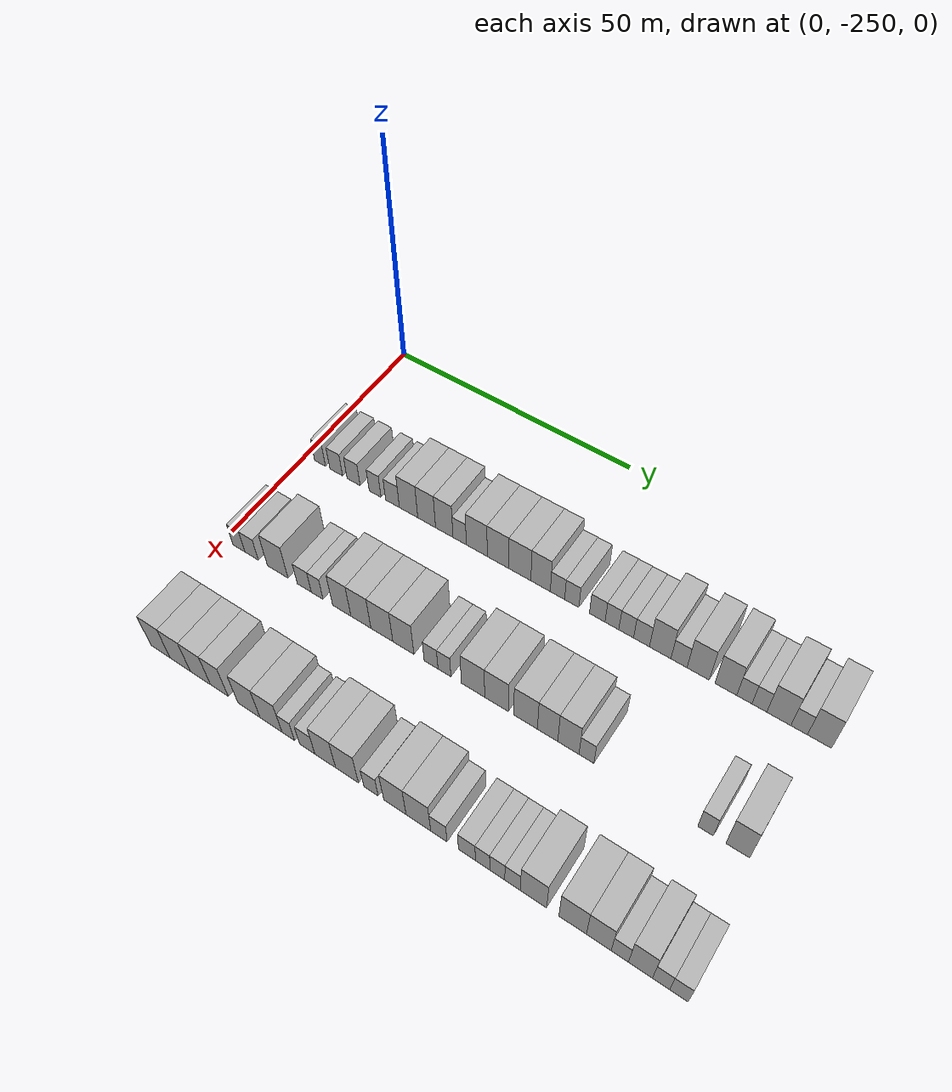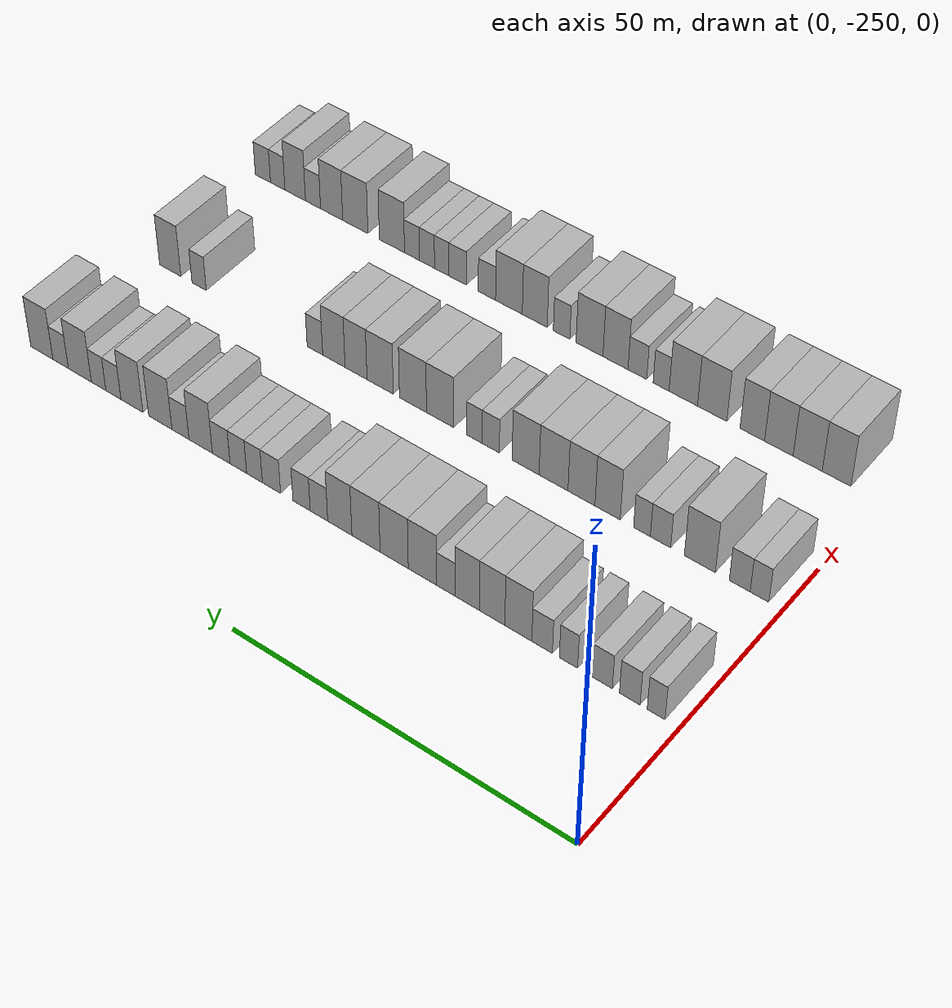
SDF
<sdf version="1.6">
 <world name="default">
  <model name="building_1">
   <static>1</static>
   <pose>25.0000 -246.7611 0 0.000000 0.000000 0.000000</pose>
   <link name="link">
    <pose>0 0 3.00 0 0 0</pose>
    <collision name="collision"><geometry><box><size>10.0000 2.4778 6.0000</size></box></geometry></collision>
    <visual name="visual">
     <cast_shadows>0</cast_shadows>
     <geometry><box><size>10.0000 2.4778 6.0000</size></box></geometry>
     <material>
      <script>
       <uri>model://HANNAS_wall/materials/scripts</uri>
       <uri>model://HANNAS_wall/materials/textures</uri>
       <name>vrc/HANNAS_wall</name>
      </script>
     </material>
    </visual>
   </link>
  </model>
  <model name="building_2">
   <static>1</static>
   <pose>25.0000 -243.0767 0 0.000000 0.000000 0.000000</pose>
   <link name="link">
    <pose>0 0 3.00 0 0 0</pose>
    <collision name="collision"><geometry><box><size>10.0000 2.8909 6.0000</size></box></geometry></collision>
    <visual name="visual">
     <cast_shadows>0</cast_shadows>
     <geometry><box><size>10.0000 2.8909 6.0000</size></box></geometry>
     <material>
      <script>
       <uri>model://HANNAS_wall/materials/scripts</uri>
       <uri>model://HANNAS_wall/materials/textures</uri>
       <name>vrc/HANNAS_wall</name>
      </script>
     </material>
    </visual>
   </link>
  </model>
  <model name="building_3">
   <static>1</static>
   <pose>25.0000 -239.1600 0 0.000000 0.000000 0.000000</pose>
   <link name="link">
    <pose>0 0 3.00 0 0 0</pose>
    <collision name="collision"><geometry><box><size>10.0000 2.9425 6.0000</size></box></geometry></collision>
    <visual name="visual">
     <cast_shadows>0</cast_shadows>
     <geometry><box><size>10.0000 2.9425 6.0000</size></box></geometry>
     <material>
      <script>
       <uri>model://HANNAS_wall/materials/scripts</uri>
       <uri>model://HANNAS_wall/materials/textures</uri>
       <name>vrc/HANNAS_wall</name>
      </script>
     </material>
    </visual>
   </link>
  </model>
  <model name="building_4">
   <static>1</static>
   <pose>25.0000 -234.3755 0 0.000000 0.000000 0.000000</pose>
   <link name="link">
    <pose>0 0 3.00 0 0 0</pose>
    <collision name="collision"><geometry><box><size>10.0000 2.6266 6.0000</size></box></geometry></collision>
    <visual name="visual">
     <cast_shadows>0</cast_shadows>
     <geometry><box><size>10.0000 2.6266 6.0000</size></box></geometry>
     <material>
      <script>
       <uri>model://HANNAS_wall/materials/scripts</uri>
       <uri>model://HANNAS_wall/materials/textures</uri>
       <name>vrc/HANNAS_wall</name>
      </script>
     </material>
    </visual>
   </link>
  </model>
  <model name="building_5">
   <static>1</static>
   <pose>25.0000 -230.5628 0 0.000000 0.000000 0.000000</pose>
   <link name="link">
    <pose>0 0 3.00 0 0 0</pose>
    <collision name="collision"><geometry><box><size>10.0000 2.9986 6.0000</size></box></geometry></collision>
    <visual name="visual">
     <cast_shadows>0</cast_shadows>
     <geometry><box><size>10.0000 2.9986 6.0000</size></box></geometry>
     <material>
      <script>
       <uri>model://HANNAS_wall/materials/scripts</uri>
       <uri>model://HANNAS_wall/materials/textures</uri>
       <name>vrc/HANNAS_wall</name>
      </script>
     </material>
    </visual>
   </link>
  </model>
  <model name="building_6">
   <static>1</static>
   <pose>25.0000 -227.0855 0 0.000000 0.000000 0.000000</pose>
   <link name="link">
    <pose>0 0 4.50 0 0 0</pose>
    <collision name="collision"><geometry><box><size>10.0000 3.9560 9.0000</size></box></geometry></collision>
    <visual name="visual">
     <cast_shadows>0</cast_shadows>
     <geometry><box><size>10.0000 3.9560 9.0000</size></box></geometry>
     <material>
      <script>
       <uri>model://HANNAS_wall/materials/scripts</uri>
       <uri>model://HANNAS_wall/materials/textures</uri>
       <name>vrc/HANNAS_wall</name>
      </script>
     </material>
    </visual>
   </link>
  </model>
  <model name="building_7">
   <static>1</static>
   <pose>25.0000 -223.2178 0 0.000000 0.000000 0.000000</pose>
   <link name="link">
    <pose>0 0 4.50 0 0 0</pose>
    <collision name="collision"><geometry><box><size>10.0000 3.7794 9.0000</size></box></geometry></collision>
    <visual name="visual">
     <cast_shadows>0</cast_shadows>
     <geometry><box><size>10.0000 3.7794 9.0000</size></box></geometry>
     <material>
      <script>
       <uri>model://HANNAS_wall/materials/scripts</uri>
       <uri>model://HANNAS_wall/materials/textures</uri>
       <name>vrc/HANNAS_wall</name>
      </script>
     </material>
    </visual>
   </link>
  </model>
  <model name="building_8">
   <static>1</static>
   <pose>25.0000 -219.4982 0 0.000000 0.000000 0.000000</pose>
   <link name="link">
    <pose>0 0 4.50 0 0 0</pose>
    <collision name="collision"><geometry><box><size>10.0000 3.6598 9.0000</size></box></geometry></collision>
    <visual name="visual">
     <cast_shadows>0</cast_shadows>
     <geometry><box><size>10.0000 3.6598 9.0000</size></box></geometry>
     <material>
      <script>
       <uri>model://HANNAS_wall/materials/scripts</uri>
       <uri>model://HANNAS_wall/materials/textures</uri>
       <name>vrc/HANNAS_wall</name>
      </script>
     </material>
    </visual>
   </link>
  </model>
  <model name="building_9">
   <static>1</static>
   <pose>25.0000 -216.2802 0 0.000000 0.000000 0.000000</pose>
   <link name="link">
    <pose>0 0 3.00 0 0 0</pose>
    <collision name="collision"><geometry><box><size>10.0000 2.7762 6.0000</size></box></geometry></collision>
    <visual name="visual">
     <cast_shadows>0</cast_shadows>
     <geometry><box><size>10.0000 2.7762 6.0000</size></box></geometry>
     <material>
      <script>
       <uri>model://HANNAS_wall/materials/scripts</uri>
       <uri>model://HANNAS_wall/materials/textures</uri>
       <name>vrc/HANNAS_wall</name>
      </script>
     </material>
    </visual>
   </link>
  </model>
  <model name="building_10">
   <static>1</static>
   <pose>25.0000 -212.7430 0 0.000000 0.000000 0.000000</pose>
   <link name="link">
    <pose>0 0 4.50 0 0 0</pose>
    <collision name="collision"><geometry><box><size>10.0000 4.2983 9.0000</size></box></geometry></collision>
    <visual name="visual">
     <cast_shadows>0</cast_shadows>
     <geometry><box><size>10.0000 4.2983 9.0000</size></box></geometry>
     <material>
      <script>
       <uri>model://HANNAS_wall/materials/scripts</uri>
       <uri>model://HANNAS_wall/materials/textures</uri>
       <name>vrc/HANNAS_wall</name>
      </script>
     </material>
    </visual>
   </link>
  </model>
  <model name="building_11">
   <static>1</static>
   <pose>25.0000 -208.4231 0 0.000000 0.000000 0.000000</pose>
   <link name="link">
    <pose>0 0 4.50 0 0 0</pose>
    <collision name="collision"><geometry><box><size>10.0000 4.3414 9.0000</size></box></geometry></collision>
    <visual name="visual">
     <cast_shadows>0</cast_shadows>
     <geometry><box><size>10.0000 4.3414 9.0000</size></box></geometry>
     <material>
      <script>
       <uri>model://HANNAS_wall/materials/scripts</uri>
       <uri>model://HANNAS_wall/materials/textures</uri>
       <name>vrc/HANNAS_wall</name>
      </script>
     </material>
    </visual>
   </link>
  </model>
  <model name="building_12">
   <static>1</static>
   <pose>25.0000 -204.0479 0 0.000000 0.000000 0.000000</pose>
   <link name="link">
    <pose>0 0 4.50 0 0 0</pose>
    <collision name="collision"><geometry><box><size>10.0000 4.4088 9.0000</size></box></geometry></collision>
    <visual name="visual">
     <cast_shadows>0</cast_shadows>
     <geometry><box><size>10.0000 4.4088 9.0000</size></box></geometry>
     <material>
      <script>
       <uri>model://HANNAS_wall/materials/scripts</uri>
       <uri>model://HANNAS_wall/materials/textures</uri>
       <name>vrc/HANNAS_wall</name>
      </script>
     </material>
    </visual>
   </link>
  </model>
  <model name="building_13">
   <static>1</static>
   <pose>25.0000 -199.9320 0 0.000000 0.000000 0.000000</pose>
   <link name="link">
    <pose>0 0 4.50 0 0 0</pose>
    <collision name="collision"><geometry><box><size>10.0000 3.8231 9.0000</size></box></geometry></collision>
    <visual name="visual">
     <cast_shadows>0</cast_shadows>
     <geometry><box><size>10.0000 3.8231 9.0000</size></box></geometry>
     <material>
      <script>
       <uri>model://HANNAS_wall/materials/scripts</uri>
       <uri>model://HANNAS_wall/materials/textures</uri>
       <name>vrc/HANNAS_wall</name>
      </script>
     </material>
    </visual>
   </link>
  </model>
  <model name="building_14">
   <static>1</static>
   <pose>25.0000 -196.6251 0 0.000000 0.000000 0.000000</pose>
   <link name="link">
    <pose>0 0 3.00 0 0 0</pose>
    <collision name="collision"><geometry><box><size>10.0000 2.7907 6.0000</size></box></geometry></collision>
    <visual name="visual">
     <cast_shadows>0</cast_shadows>
     <geometry><box><size>10.0000 2.7907 6.0000</size></box></geometry>
     <material>
      <script>
       <uri>model://HANNAS_wall/materials/scripts</uri>
       <uri>model://HANNAS_wall/materials/textures</uri>
       <name>vrc/HANNAS_wall</name>
      </script>
     </material>
    </visual>
   </link>
  </model>
  <model name="building_15">
   <static>1</static>
   <pose>25.0000 -193.8484 0 0.000000 0.000000 0.000000</pose>
   <link name="link">
    <pose>0 0 3.00 0 0 0</pose>
    <collision name="collision"><geometry><box><size>10.0000 2.7627 6.0000</size></box></geometry></collision>
    <visual name="visual">
     <cast_shadows>0</cast_shadows>
     <geometry><box><size>10.0000 2.7627 6.0000</size></box></geometry>
     <material>
      <script>
       <uri>model://HANNAS_wall/materials/scripts</uri>
       <uri>model://HANNAS_wall/materials/textures</uri>
       <name>vrc/HANNAS_wall</name>
      </script>
     </material>
    </visual>
   </link>
  </model>
  <model name="building_16">
   <static>1</static>
   <pose>25.0000 -188.9910 0 0.000000 0.000000 0.000000</pose>
   <link name="link">
    <pose>0 0 3.00 0 0 0</pose>
    <collision name="collision"><geometry><box><size>10.0000 2.9520 6.0000</size></box></geometry></collision>
    <visual name="visual">
     <cast_shadows>0</cast_shadows>
     <geometry><box><size>10.0000 2.9520 6.0000</size></box></geometry>
     <material>
      <script>
       <uri>model://HANNAS_wall/materials/scripts</uri>
       <uri>model://HANNAS_wall/materials/textures</uri>
       <name>vrc/HANNAS_wall</name>
      </script>
     </material>
    </visual>
   </link>
  </model>
  <model name="building_17">
   <static>1</static>
   <pose>25.0000 -186.2234 0 0.000000 0.000000 0.000000</pose>
   <link name="link">
    <pose>0 0 3.00 0 0 0</pose>
    <collision name="collision"><geometry><box><size>10.0000 2.5832 6.0000</size></box></geometry></collision>
    <visual name="visual">
     <cast_shadows>0</cast_shadows>
     <geometry><box><size>10.0000 2.5832 6.0000</size></box></geometry>
     <material>
      <script>
       <uri>model://HANNAS_wall/materials/scripts</uri>
       <uri>model://HANNAS_wall/materials/textures</uri>
       <name>vrc/HANNAS_wall</name>
      </script>
     </material>
    </visual>
   </link>
  </model>
  <model name="building_18">
   <static>1</static>
   <pose>25.0000 -183.5607 0 0.000000 0.000000 0.000000</pose>
   <link name="link">
    <pose>0 0 3.00 0 0 0</pose>
    <collision name="collision"><geometry><box><size>10.0000 2.7422 6.0000</size></box></geometry></collision>
    <visual name="visual">
     <cast_shadows>0</cast_shadows>
     <geometry><box><size>10.0000 2.7422 6.0000</size></box></geometry>
     <material>
      <script>
       <uri>model://HANNAS_wall/materials/scripts</uri>
       <uri>model://HANNAS_wall/materials/textures</uri>
       <name>vrc/HANNAS_wall</name>
      </script>
     </material>
    </visual>
   </link>
  </model>
  <model name="building_19">
   <static>1</static>
   <pose>25.0000 -180.7234 0 0.000000 0.000000 0.000000</pose>
   <link name="link">
    <pose>0 0 3.00 0 0 0</pose>
    <collision name="collision"><geometry><box><size>10.0000 2.9323 6.0000</size></box></geometry></collision>
    <visual name="visual">
     <cast_shadows>0</cast_shadows>
     <geometry><box><size>10.0000 2.9323 6.0000</size></box></geometry>
     <material>
      <script>
       <uri>model://HANNAS_wall/materials/scripts</uri>
       <uri>model://HANNAS_wall/materials/textures</uri>
       <name>vrc/HANNAS_wall</name>
      </script>
     </material>
    </visual>
   </link>
  </model>
  <model name="building_20">
   <static>1</static>
   <pose>25.0000 -177.3001 0 0.000000 0.000000 0.000000</pose>
   <link name="link">
    <pose>0 0 4.50 0 0 0</pose>
    <collision name="collision"><geometry><box><size>10.0000 3.9144 9.0000</size></box></geometry></collision>
    <visual name="visual">
     <cast_shadows>0</cast_shadows>
     <geometry><box><size>10.0000 3.9144 9.0000</size></box></geometry>
     <material>
      <script>
       <uri>model://HANNAS_wall/materials/scripts</uri>
       <uri>model://HANNAS_wall/materials/textures</uri>
       <name>vrc/HANNAS_wall</name>
      </script>
     </material>
    </visual>
   </link>
  </model>
  <model name="building_21">
   <static>1</static>
   <pose>25.0000 -173.9023 0 0.000000 0.000000 0.000000</pose>
   <link name="link">
    <pose>0 0 3.00 0 0 0</pose>
    <collision name="collision"><geometry><box><size>10.0000 2.8811 6.0000</size></box></geometry></collision>
    <visual name="visual">
     <cast_shadows>0</cast_shadows>
     <geometry><box><size>10.0000 2.8811 6.0000</size></box></geometry>
     <material>
      <script>
       <uri>model://HANNAS_wall/materials/scripts</uri>
       <uri>model://HANNAS_wall/materials/textures</uri>
       <name>vrc/HANNAS_wall</name>
      </script>
     </material>
    </visual>
   </link>
  </model>
  <model name="building_22">
   <static>1</static>
   <pose>25.0000 -170.4851 0 0.000000 0.000000 0.000000</pose>
   <link name="link">
    <pose>0 0 4.50 0 0 0</pose>
    <collision name="collision"><geometry><box><size>10.0000 3.9534 9.0000</size></box></geometry></collision>
    <visual name="visual">
     <cast_shadows>0</cast_shadows>
     <geometry><box><size>10.0000 3.9534 9.0000</size></box></geometry>
     <material>
      <script>
       <uri>model://HANNAS_wall/materials/scripts</uri>
       <uri>model://HANNAS_wall/materials/textures</uri>
       <name>vrc/HANNAS_wall</name>
      </script>
     </material>
    </visual>
   </link>
  </model>
  <model name="building_23">
   <static>1</static>
   <pose>25.0000 -165.6124 0 0.000000 0.000000 0.000000</pose>
   <link name="link">
    <pose>0 0 4.50 0 0 0</pose>
    <collision name="collision"><geometry><box><size>10.0000 3.7921 9.0000</size></box></geometry></collision>
    <visual name="visual">
     <cast_shadows>0</cast_shadows>
     <geometry><box><size>10.0000 3.7921 9.0000</size></box></geometry>
     <material>
      <script>
       <uri>model://HANNAS_wall/materials/scripts</uri>
       <uri>model://HANNAS_wall/materials/textures</uri>
       <name>vrc/HANNAS_wall</name>
      </script>
     </material>
    </visual>
   </link>
  </model>
  <model name="building_24">
   <static>1</static>
   <pose>25.0000 -162.4022 0 0.000000 0.000000 0.000000</pose>
   <link name="link">
    <pose>0 0 3.00 0 0 0</pose>
    <collision name="collision"><geometry><box><size>10.0000 2.6282 6.0000</size></box></geometry></collision>
    <visual name="visual">
     <cast_shadows>0</cast_shadows>
     <geometry><box><size>10.0000 2.6282 6.0000</size></box></geometry>
     <material>
      <script>
       <uri>model://HANNAS_wall/materials/scripts</uri>
       <uri>model://HANNAS_wall/materials/textures</uri>
       <name>vrc/HANNAS_wall</name>
      </script>
     </material>
    </visual>
   </link>
  </model>
  <model name="building_25">
   <static>1</static>
   <pose>25.0000 -159.8226 0 0.000000 0.000000 0.000000</pose>
   <link name="link">
    <pose>0 0 3.00 0 0 0</pose>
    <collision name="collision"><geometry><box><size>10.0000 2.5311 6.0000</size></box></geometry></collision>
    <visual name="visual">
     <cast_shadows>0</cast_shadows>
     <geometry><box><size>10.0000 2.5311 6.0000</size></box></geometry>
     <material>
      <script>
       <uri>model://HANNAS_wall/materials/scripts</uri>
       <uri>model://HANNAS_wall/materials/textures</uri>
       <name>vrc/HANNAS_wall</name>
      </script>
     </material>
    </visual>
   </link>
  </model>
  <model name="building_26">
   <static>1</static>
   <pose>25.0000 -156.5214 0 0.000000 0.000000 0.000000</pose>
   <link name="link">
    <pose>0 0 4.50 0 0 0</pose>
    <collision name="collision"><geometry><box><size>10.0000 4.0711 9.0000</size></box></geometry></collision>
    <visual name="visual">
     <cast_shadows>0</cast_shadows>
     <geometry><box><size>10.0000 4.0711 9.0000</size></box></geometry>
     <material>
      <script>
       <uri>model://HANNAS_wall/materials/scripts</uri>
       <uri>model://HANNAS_wall/materials/textures</uri>
       <name>vrc/HANNAS_wall</name>
      </script>
     </material>
    </visual>
   </link>
  </model>
  <model name="building_27">
   <static>1</static>
   <pose>25.0000 -153.1143 0 0.000000 0.000000 0.000000</pose>
   <link name="link">
    <pose>0 0 3.00 0 0 0</pose>
    <collision name="collision"><geometry><box><size>10.0000 2.7433 6.0000</size></box></geometry></collision>
    <visual name="visual">
     <cast_shadows>0</cast_shadows>
     <geometry><box><size>10.0000 2.7433 6.0000</size></box></geometry>
     <material>
      <script>
       <uri>model://HANNAS_wall/materials/scripts</uri>
       <uri>model://HANNAS_wall/materials/textures</uri>
       <name>vrc/HANNAS_wall</name>
      </script>
     </material>
    </visual>
   </link>
  </model>
  <model name="building_28">
   <static>1</static>
   <pose>25.0000 -149.7521 0 0.000000 0.000000 0.000000</pose>
   <link name="link">
    <pose>0 0 4.50 0 0 0</pose>
    <collision name="collision"><geometry><box><size>10.0000 3.9810 9.0000</size></box></geometry></collision>
    <visual name="visual">
     <cast_shadows>0</cast_shadows>
     <geometry><box><size>10.0000 3.9810 9.0000</size></box></geometry>
     <material>
      <script>
       <uri>model://HANNAS_wall/materials/scripts</uri>
       <uri>model://HANNAS_wall/materials/textures</uri>
       <name>vrc/HANNAS_wall</name>
      </script>
     </material>
    </visual>
   </link>
  </model>
  <model name="building_126">
   <static>1</static>
   <pose>47.0000 -246.6722 0 0.000000 0.000000 0.000000</pose>
   <link name="link">
    <pose>0 0 3.00 0 0 0</pose>
    <collision name="collision"><geometry><box><size>10.0000 2.6557 6.0000</size></box></geometry></collision>
    <visual name="visual">
     <cast_shadows>0</cast_shadows>
     <geometry><box><size>10.0000 2.6557 6.0000</size></box></geometry>
     <material>
      <script>
       <uri>model://HANNAS_wall/materials/scripts</uri>
       <uri>model://HANNAS_wall/materials/textures</uri>
       <name>vrc/HANNAS_wall</name>
      </script>
     </material>
    </visual>
   </link>
  </model>
  <model name="building_127">
   <static>1</static>
   <pose>47.0000 -243.8579 0 0.000000 0.000000 0.000000</pose>
   <link name="link">
    <pose>0 0 3.00 0 0 0</pose>
    <collision name="collision"><geometry><box><size>10.0000 2.9728 6.0000</size></box></geometry></collision>
    <visual name="visual">
     <cast_shadows>0</cast_shadows>
     <geometry><box><size>10.0000 2.9728 6.0000</size></box></geometry>
     <material>
      <script>
       <uri>model://HANNAS_wall/materials/scripts</uri>
       <uri>model://HANNAS_wall/materials/textures</uri>
       <name>vrc/HANNAS_wall</name>
      </script>
     </material>
    </visual>
   </link>
  </model>
  <model name="building_128">
   <static>1</static>
   <pose>47.0000 -238.1235 0 0.000000 0.000000 0.000000</pose>
   <link name="link">
    <pose>0 0 4.50 0 0 0</pose>
    <collision name="collision"><geometry><box><size>10.0000 4.4960 9.0000</size></box></geometry></collision>
    <visual name="visual">
     <cast_shadows>0</cast_shadows>
     <geometry><box><size>10.0000 4.4960 9.0000</size></box></geometry>
     <material>
      <script>
       <uri>model://HANNAS_wall/materials/scripts</uri>
       <uri>model://HANNAS_wall/materials/textures</uri>
       <name>vrc/HANNAS_wall</name>
      </script>
     </material>
    </visual>
   </link>
  </model>
  <model name="building_129">
   <static>1</static>
   <pose>47.0000 -232.3757 0 0.000000 0.000000 0.000000</pose>
   <link name="link">
    <pose>0 0 3.00 0 0 0</pose>
    <collision name="collision"><geometry><box><size>10.0000 2.9996 6.0000</size></box></geometry></collision>
    <visual name="visual">
     <cast_shadows>0</cast_shadows>
     <geometry><box><size>10.0000 2.9996 6.0000</size></box></geometry>
     <material>
      <script>
       <uri>model://HANNAS_wall/materials/scripts</uri>
       <uri>model://HANNAS_wall/materials/textures</uri>
       <name>vrc/HANNAS_wall</name>
      </script>
     </material>
    </visual>
   </link>
  </model>
  <model name="building_130">
   <static>1</static>
   <pose>47.0000 -229.6396 0 0.000000 0.000000 0.000000</pose>
   <link name="link">
    <pose>0 0 3.00 0 0 0</pose>
    <collision name="collision"><geometry><box><size>10.0000 2.4726 6.0000</size></box></geometry></collision>
    <visual name="visual">
     <cast_shadows>0</cast_shadows>
     <geometry><box><size>10.0000 2.4726 6.0000</size></box></geometry>
     <material>
      <script>
       <uri>model://HANNAS_wall/materials/scripts</uri>
       <uri>model://HANNAS_wall/materials/textures</uri>
       <name>vrc/HANNAS_wall</name>
      </script>
     </material>
    </visual>
   </link>
  </model>
  <model name="building_131">
   <static>1</static>
   <pose>47.0000 -224.5031 0 0.000000 0.000000 0.000000</pose>
   <link name="link">
    <pose>0 0 4.50 0 0 0</pose>
    <collision name="collision"><geometry><box><size>10.0000 3.8004 9.0000</size></box></geometry></collision>
    <visual name="visual">
     <cast_shadows>0</cast_shadows>
     <geometry><box><size>10.0000 3.8004 9.0000</size></box></geometry>
     <material>
      <script>
       <uri>model://HANNAS_wall/materials/scripts</uri>
       <uri>model://HANNAS_wall/materials/textures</uri>
       <name>vrc/HANNAS_wall</name>
      </script>
     </material>
    </visual>
   </link>
  </model>
  <model name="building_132">
   <static>1</static>
   <pose>47.0000 -220.5522 0 0.000000 0.000000 0.000000</pose>
   <link name="link">
    <pose>0 0 4.50 0 0 0</pose>
    <collision name="collision"><geometry><box><size>10.0000 4.1014 9.0000</size></box></geometry></collision>
    <visual name="visual">
     <cast_shadows>0</cast_shadows>
     <geometry><box><size>10.0000 4.1014 9.0000</size></box></geometry>
     <material>
      <script>
       <uri>model://HANNAS_wall/materials/scripts</uri>
       <uri>model://HANNAS_wall/materials/textures</uri>
       <name>vrc/HANNAS_wall</name>
      </script>
     </material>
    </visual>
   </link>
  </model>
  <model name="building_133">
   <static>1</static>
   <pose>47.0000 -216.2866 0 0.000000 0.000000 0.000000</pose>
   <link name="link">
    <pose>0 0 4.50 0 0 0</pose>
    <collision name="collision"><geometry><box><size>10.0000 4.4298 9.0000</size></box></geometry></collision>
    <visual name="visual">
     <cast_shadows>0</cast_shadows>
     <geometry><box><size>10.0000 4.4298 9.0000</size></box></geometry>
     <material>
      <script>
       <uri>model://HANNAS_wall/materials/scripts</uri>
       <uri>model://HANNAS_wall/materials/textures</uri>
       <name>vrc/HANNAS_wall</name>
      </script>
     </material>
    </visual>
   </link>
  </model>
  <model name="building_134">
   <static>1</static>
   <pose>47.0000 -211.9727 0 0.000000 0.000000 0.000000</pose>
   <link name="link">
    <pose>0 0 4.50 0 0 0</pose>
    <collision name="collision"><geometry><box><size>10.0000 4.1980 9.0000</size></box></geometry></collision>
    <visual name="visual">
     <cast_shadows>0</cast_shadows>
     <geometry><box><size>10.0000 4.1980 9.0000</size></box></geometry>
     <material>
      <script>
       <uri>model://HANNAS_wall/materials/scripts</uri>
       <uri>model://HANNAS_wall/materials/textures</uri>
       <name>vrc/HANNAS_wall</name>
      </script>
     </material>
    </visual>
   </link>
  </model>
  <model name="building_135">
   <static>1</static>
   <pose>47.0000 -206.5234 0 0.000000 0.000000 0.000000</pose>
   <link name="link">
    <pose>0 0 3.00 0 0 0</pose>
    <collision name="collision"><geometry><box><size>10.0000 2.7005 6.0000</size></box></geometry></collision>
    <visual name="visual">
     <cast_shadows>0</cast_shadows>
     <geometry><box><size>10.0000 2.7005 6.0000</size></box></geometry>
     <material>
      <script>
       <uri>model://HANNAS_wall/materials/scripts</uri>
       <uri>model://HANNAS_wall/materials/textures</uri>
       <name>vrc/HANNAS_wall</name>
      </script>
     </material>
    </visual>
   </link>
  </model>
  <model name="building_136">
   <static>1</static>
   <pose>47.0000 -203.9243 0 0.000000 0.000000 0.000000</pose>
   <link name="link">
    <pose>0 0 3.00 0 0 0</pose>
    <collision name="collision"><geometry><box><size>10.0000 2.4977 6.0000</size></box></geometry></collision>
    <visual name="visual">
     <cast_shadows>0</cast_shadows>
     <geometry><box><size>10.0000 2.4977 6.0000</size></box></geometry>
     <material>
      <script>
       <uri>model://HANNAS_wall/materials/scripts</uri>
       <uri>model://HANNAS_wall/materials/textures</uri>
       <name>vrc/HANNAS_wall</name>
      </script>
     </material>
    </visual>
   </link>
  </model>
  <model name="building_137">
   <static>1</static>
   <pose>47.0000 -198.4688 0 0.000000 0.000000 0.000000</pose>
   <link name="link">
    <pose>0 0 4.50 0 0 0</pose>
    <collision name="collision"><geometry><box><size>10.0000 4.4133 9.0000</size></box></geometry></collision>
    <visual name="visual">
     <cast_shadows>0</cast_shadows>
     <geometry><box><size>10.0000 4.4133 9.0000</size></box></geometry>
     <material>
      <script>
       <uri>model://HANNAS_wall/materials/scripts</uri>
       <uri>model://HANNAS_wall/materials/textures</uri>
       <name>vrc/HANNAS_wall</name>
      </script>
     </material>
    </visual>
   </link>
  </model>
  <model name="building_138">
   <static>1</static>
   <pose>47.0000 -194.0673 0 0.000000 0.000000 0.000000</pose>
   <link name="link">
    <pose>0 0 4.50 0 0 0</pose>
    <collision name="collision"><geometry><box><size>10.0000 4.3899 9.0000</size></box></geometry></collision>
    <visual name="visual">
     <cast_shadows>0</cast_shadows>
     <geometry><box><size>10.0000 4.3899 9.0000</size></box></geometry>
     <material>
      <script>
       <uri>model://HANNAS_wall/materials/scripts</uri>
       <uri>model://HANNAS_wall/materials/textures</uri>
       <name>vrc/HANNAS_wall</name>
      </script>
     </material>
    </visual>
   </link>
  </model>
  <model name="building_139">
   <static>1</static>
   <pose>47.0000 -188.7061 0 0.000000 0.000000 0.000000</pose>
   <link name="link">
    <pose>0 0 4.50 0 0 0</pose>
    <collision name="collision"><geometry><box><size>10.0000 4.3324 9.0000</size></box></geometry></collision>
    <visual name="visual">
     <cast_shadows>0</cast_shadows>
     <geometry><box><size>10.0000 4.3324 9.0000</size></box></geometry>
     <material>
      <script>
       <uri>model://HANNAS_wall/materials/scripts</uri>
       <uri>model://HANNAS_wall/materials/textures</uri>
       <name>vrc/HANNAS_wall</name>
      </script>
     </material>
    </visual>
   </link>
  </model>
  <model name="building_140">
   <static>1</static>
   <pose>47.0000 -184.7120 0 0.000000 0.000000 0.000000</pose>
   <link name="link">
    <pose>0 0 4.50 0 0 0</pose>
    <collision name="collision"><geometry><box><size>10.0000 3.6558 9.0000</size></box></geometry></collision>
    <visual name="visual">
     <cast_shadows>0</cast_shadows>
     <geometry><box><size>10.0000 3.6558 9.0000</size></box></geometry>
     <material>
      <script>
       <uri>model://HANNAS_wall/materials/scripts</uri>
       <uri>model://HANNAS_wall/materials/textures</uri>
       <name>vrc/HANNAS_wall</name>
      </script>
     </material>
    </visual>
   </link>
  </model>
  <model name="building_141">
   <static>1</static>
   <pose>47.0000 -181.0004 0 0.000000 0.000000 0.000000</pose>
   <link name="link">
    <pose>0 0 4.50 0 0 0</pose>
    <collision name="collision"><geometry><box><size>10.0000 3.7674 9.0000</size></box></geometry></collision>
    <visual name="visual">
     <cast_shadows>0</cast_shadows>
     <geometry><box><size>10.0000 3.7674 9.0000</size></box></geometry>
     <material>
      <script>
       <uri>model://HANNAS_wall/materials/scripts</uri>
       <uri>model://HANNAS_wall/materials/textures</uri>
       <name>vrc/HANNAS_wall</name>
      </script>
     </material>
    </visual>
   </link>
  </model>
  <model name="building_142">
   <static>1</static>
   <pose>47.0000 -177.8036 0 0.000000 0.000000 0.000000</pose>
   <link name="link">
    <pose>0 0 3.00 0 0 0</pose>
    <collision name="collision"><geometry><box><size>10.0000 2.6261 6.0000</size></box></geometry></collision>
    <visual name="visual">
     <cast_shadows>0</cast_shadows>
     <geometry><box><size>10.0000 2.6261 6.0000</size></box></geometry>
     <material>
      <script>
       <uri>model://HANNAS_wall/materials/scripts</uri>
       <uri>model://HANNAS_wall/materials/textures</uri>
       <name>vrc/HANNAS_wall</name>
      </script>
     </material>
    </visual>
   </link>
  </model>
  <model name="building_143">
   <static>1</static>
   <pose>47.0000 -157.6840 0 0.000000 0.000000 0.000000</pose>
   <link name="link">
    <pose>0 0 3.00 0 0 0</pose>
    <collision name="collision"><geometry><box><size>10.0000 2.5377 6.0000</size></box></geometry></collision>
    <visual name="visual">
     <cast_shadows>0</cast_shadows>
     <geometry><box><size>10.0000 2.5377 6.0000</size></box></geometry>
     <material>
      <script>
       <uri>model://HANNAS_wall/materials/scripts</uri>
       <uri>model://HANNAS_wall/materials/textures</uri>
       <name>vrc/HANNAS_wall</name>
      </script>
     </material>
    </visual>
   </link>
  </model>
  <model name="building_144">
   <static>1</static>
   <pose>47.0000 -152.5101 0 0.000000 0.000000 0.000000</pose>
   <link name="link">
    <pose>0 0 4.50 0 0 0</pose>
    <collision name="collision"><geometry><box><size>10.0000 3.8101 9.0000</size></box></geometry></collision>
    <visual name="visual">
     <cast_shadows>0</cast_shadows>
     <geometry><box><size>10.0000 3.8101 9.0000</size></box></geometry>
     <material>
      <script>
       <uri>model://HANNAS_wall/materials/scripts</uri>
       <uri>model://HANNAS_wall/materials/textures</uri>
       <name>vrc/HANNAS_wall</name>
      </script>
     </material>
    </visual>
   </link>
  </model>
  <model name="building_242">
   <static>1</static>
   <pose>69.0000 -243.9073 0 0.000000 0.000000 0.000000</pose>
   <link name="link">
    <pose>0 0 4.50 0 0 0</pose>
    <collision name="collision"><geometry><box><size>10.0000 4.1855 9.0000</size></box></geometry></collision>
    <visual name="visual">
     <cast_shadows>0</cast_shadows>
     <geometry><box><size>10.0000 4.1855 9.0000</size></box></geometry>
     <material>
      <script>
       <uri>model://HANNAS_wall/materials/scripts</uri>
       <uri>model://HANNAS_wall/materials/textures</uri>
       <name>vrc/HANNAS_wall</name>
      </script>
     </material>
    </visual>
   </link>
  </model>
  <model name="building_243">
   <static>1</static>
   <pose>69.0000 -239.6713 0 0.000000 0.000000 0.000000</pose>
   <link name="link">
    <pose>0 0 4.50 0 0 0</pose>
    <collision name="collision"><geometry><box><size>10.0000 4.2866 9.0000</size></box></geometry></collision>
    <visual name="visual">
     <cast_shadows>0</cast_shadows>
     <geometry><box><size>10.0000 4.2866 9.0000</size></box></geometry>
     <material>
      <script>
       <uri>model://HANNAS_wall/materials/scripts</uri>
       <uri>model://HANNAS_wall/materials/textures</uri>
       <name>vrc/HANNAS_wall</name>
      </script>
     </material>
    </visual>
   </link>
  </model>
  <model name="building_244">
   <static>1</static>
   <pose>69.0000 -235.4084 0 0.000000 0.000000 0.000000</pose>
   <link name="link">
    <pose>0 0 4.50 0 0 0</pose>
    <collision name="collision"><geometry><box><size>10.0000 4.2391 9.0000</size></box></geometry></collision>
    <visual name="visual">
     <cast_shadows>0</cast_shadows>
     <geometry><box><size>10.0000 4.2391 9.0000</size></box></geometry>
     <material>
      <script>
       <uri>model://HANNAS_wall/materials/scripts</uri>
       <uri>model://HANNAS_wall/materials/textures</uri>
       <name>vrc/HANNAS_wall</name>
      </script>
     </material>
    </visual>
   </link>
  </model>
  <model name="building_245">
   <static>1</static>
   <pose>69.0000 -231.4416 0 0.000000 0.000000 0.000000</pose>
   <link name="link">
    <pose>0 0 4.50 0 0 0</pose>
    <collision name="collision"><geometry><box><size>10.0000 3.6946 9.0000</size></box></geometry></collision>
    <visual name="visual">
     <cast_shadows>0</cast_shadows>
     <geometry><box><size>10.0000 3.6946 9.0000</size></box></geometry>
     <material>
      <script>
       <uri>model://HANNAS_wall/materials/scripts</uri>
       <uri>model://HANNAS_wall/materials/textures</uri>
       <name>vrc/HANNAS_wall</name>
      </script>
     </material>
    </visual>
   </link>
  </model>
  <model name="building_246">
   <static>1</static>
   <pose>69.0000 -225.3547 0 0.000000 0.000000 0.000000</pose>
   <link name="link">
    <pose>0 0 4.50 0 0 0</pose>
    <collision name="collision"><geometry><box><size>10.0000 4.4791 9.0000</size></box></geometry></collision>
    <visual name="visual">
     <cast_shadows>0</cast_shadows>
     <geometry><box><size>10.0000 4.4791 9.0000</size></box></geometry>
     <material>
      <script>
       <uri>model://HANNAS_wall/materials/scripts</uri>
       <uri>model://HANNAS_wall/materials/textures</uri>
       <name>vrc/HANNAS_wall</name>
      </script>
     </material>
    </visual>
   </link>
  </model>
  <model name="building_247">
   <static>1</static>
   <pose>69.0000 -220.9195 0 0.000000 0.000000 0.000000</pose>
   <link name="link">
    <pose>0 0 4.50 0 0 0</pose>
    <collision name="collision"><geometry><box><size>10.0000 4.3913 9.0000</size></box></geometry></collision>
    <visual name="visual">
     <cast_shadows>0</cast_shadows>
     <geometry><box><size>10.0000 4.3913 9.0000</size></box></geometry>
     <material>
      <script>
       <uri>model://HANNAS_wall/materials/scripts</uri>
       <uri>model://HANNAS_wall/materials/textures</uri>
       <name>vrc/HANNAS_wall</name>
      </script>
     </material>
    </visual>
   </link>
  </model>
  <model name="building_248">
   <static>1</static>
   <pose>69.0000 -217.4851 0 0.000000 0.000000 0.000000</pose>
   <link name="link">
    <pose>0 0 3.00 0 0 0</pose>
    <collision name="collision"><geometry><box><size>10.0000 2.4777 6.0000</size></box></geometry></collision>
    <visual name="visual">
     <cast_shadows>0</cast_shadows>
     <geometry><box><size>10.0000 2.4777 6.0000</size></box></geometry>
     <material>
      <script>
       <uri>model://HANNAS_wall/materials/scripts</uri>
       <uri>model://HANNAS_wall/materials/textures</uri>
       <name>vrc/HANNAS_wall</name>
      </script>
     </material>
    </visual>
   </link>
  </model>
  <model name="building_249">
   <static>1</static>
   <pose>69.0000 -213.7729 0 0.000000 0.000000 0.000000</pose>
   <link name="link">
    <pose>0 0 3.00 0 0 0</pose>
    <collision name="collision"><geometry><box><size>10.0000 2.9466 6.0000</size></box></geometry></collision>
    <visual name="visual">
     <cast_shadows>0</cast_shadows>
     <geometry><box><size>10.0000 2.9466 6.0000</size></box></geometry>
     <material>
      <script>
       <uri>model://HANNAS_wall/materials/scripts</uri>
       <uri>model://HANNAS_wall/materials/textures</uri>
       <name>vrc/HANNAS_wall</name>
      </script>
     </material>
    </visual>
   </link>
  </model>
  <model name="building_250">
   <static>1</static>
   <pose>69.0000 -210.3075 0 0.000000 0.000000 0.000000</pose>
   <link name="link">
    <pose>0 0 4.50 0 0 0</pose>
    <collision name="collision"><geometry><box><size>10.0000 3.9843 9.0000</size></box></geometry></collision>
    <visual name="visual">
     <cast_shadows>0</cast_shadows>
     <geometry><box><size>10.0000 3.9843 9.0000</size></box></geometry>
     <material>
      <script>
       <uri>model://HANNAS_wall/materials/scripts</uri>
       <uri>model://HANNAS_wall/materials/textures</uri>
       <name>vrc/HANNAS_wall</name>
      </script>
     </material>
    </visual>
   </link>
  </model>
  <model name="building_251">
   <static>1</static>
   <pose>69.0000 -206.1625 0 0.000000 0.000000 0.000000</pose>
   <link name="link">
    <pose>0 0 4.50 0 0 0</pose>
    <collision name="collision"><geometry><box><size>10.0000 4.3058 9.0000</size></box></geometry></collision>
    <visual name="visual">
     <cast_shadows>0</cast_shadows>
     <geometry><box><size>10.0000 4.3058 9.0000</size></box></geometry>
     <material>
      <script>
       <uri>model://HANNAS_wall/materials/scripts</uri>
       <uri>model://HANNAS_wall/materials/textures</uri>
       <name>vrc/HANNAS_wall</name>
      </script>
     </material>
    </visual>
   </link>
  </model>
  <model name="building_252">
   <static>1</static>
   <pose>69.0000 -201.6707 0 0.000000 0.000000 0.000000</pose>
   <link name="link">
    <pose>0 0 3.00 0 0 0</pose>
    <collision name="collision"><geometry><box><size>10.0000 2.6778 6.0000</size></box></geometry></collision>
    <visual name="visual">
     <cast_shadows>0</cast_shadows>
     <geometry><box><size>10.0000 2.6778 6.0000</size></box></geometry>
     <material>
      <script>
       <uri>model://HANNAS_wall/materials/scripts</uri>
       <uri>model://HANNAS_wall/materials/textures</uri>
       <name>vrc/HANNAS_wall</name>
      </script>
     </material>
    </visual>
   </link>
  </model>
  <model name="building_253">
   <static>1</static>
   <pose>69.0000 -197.2930 0 0.000000 0.000000 0.000000</pose>
   <link name="link">
    <pose>0 0 4.50 0 0 0</pose>
    <collision name="collision"><geometry><box><size>10.0000 4.0776 9.0000</size></box></geometry></collision>
    <visual name="visual">
     <cast_shadows>0</cast_shadows>
     <geometry><box><size>10.0000 4.0776 9.0000</size></box></geometry>
     <material>
      <script>
       <uri>model://HANNAS_wall/materials/scripts</uri>
       <uri>model://HANNAS_wall/materials/textures</uri>
       <name>vrc/HANNAS_wall</name>
      </script>
     </material>
    </visual>
   </link>
  </model>
  <model name="building_254">
   <static>1</static>
   <pose>69.0000 -193.0416 0 0.000000 0.000000 0.000000</pose>
   <link name="link">
    <pose>0 0 4.50 0 0 0</pose>
    <collision name="collision"><geometry><box><size>10.0000 4.4251 9.0000</size></box></geometry></collision>
    <visual name="visual">
     <cast_shadows>0</cast_shadows>
     <geometry><box><size>10.0000 4.4251 9.0000</size></box></geometry>
     <material>
      <script>
       <uri>model://HANNAS_wall/materials/scripts</uri>
       <uri>model://HANNAS_wall/materials/textures</uri>
       <name>vrc/HANNAS_wall</name>
      </script>
     </material>
    </visual>
   </link>
  </model>
  <model name="building_255">
   <static>1</static>
   <pose>69.0000 -189.3812 0 0.000000 0.000000 0.000000</pose>
   <link name="link">
    <pose>0 0 3.00 0 0 0</pose>
    <collision name="collision"><geometry><box><size>10.0000 2.8956 6.0000</size></box></geometry></collision>
    <visual name="visual">
     <cast_shadows>0</cast_shadows>
     <geometry><box><size>10.0000 2.8956 6.0000</size></box></geometry>
     <material>
      <script>
       <uri>model://HANNAS_wall/materials/scripts</uri>
       <uri>model://HANNAS_wall/materials/textures</uri>
       <name>vrc/HANNAS_wall</name>
      </script>
     </material>
    </visual>
   </link>
  </model>
  <model name="building_256">
   <static>1</static>
   <pose>69.0000 -184.4601 0 0.000000 0.000000 0.000000</pose>
   <link name="link">
    <pose>0 0 3.00 0 0 0</pose>
    <collision name="collision"><geometry><box><size>10.0000 2.9466 6.0000</size></box></geometry></collision>
    <visual name="visual">
     <cast_shadows>0</cast_shadows>
     <geometry><box><size>10.0000 2.9466 6.0000</size></box></geometry>
     <material>
      <script>
       <uri>model://HANNAS_wall/materials/scripts</uri>
       <uri>model://HANNAS_wall/materials/textures</uri>
       <name>vrc/HANNAS_wall</name>
      </script>
     </material>
    </visual>
   </link>
  </model>
  <model name="building_257">
   <static>1</static>
   <pose>69.0000 -181.7624 0 0.000000 0.000000 0.000000</pose>
   <link name="link">
    <pose>0 0 3.00 0 0 0</pose>
    <collision name="collision"><geometry><box><size>10.0000 2.4489 6.0000</size></box></geometry></collision>
    <visual name="visual">
     <cast_shadows>0</cast_shadows>
     <geometry><box><size>10.0000 2.4489 6.0000</size></box></geometry>
     <material>
      <script>
       <uri>model://HANNAS_wall/materials/scripts</uri>
       <uri>model://HANNAS_wall/materials/textures</uri>
       <name>vrc/HANNAS_wall</name>
      </script>
     </material>
    </visual>
   </link>
  </model>
  <model name="building_258">
   <static>1</static>
   <pose>69.0000 -179.2657 0 0.000000 0.000000 0.000000</pose>
   <link name="link">
    <pose>0 0 3.00 0 0 0</pose>
    <collision name="collision"><geometry><box><size>10.0000 2.5444 6.0000</size></box></geometry></collision>
    <visual name="visual">
     <cast_shadows>0</cast_shadows>
     <geometry><box><size>10.0000 2.5444 6.0000</size></box></geometry>
     <material>
      <script>
       <uri>model://HANNAS_wall/materials/scripts</uri>
       <uri>model://HANNAS_wall/materials/textures</uri>
       <name>vrc/HANNAS_wall</name>
      </script>
     </material>
    </visual>
   </link>
  </model>
  <model name="building_259">
   <static>1</static>
   <pose>69.0000 -176.6907 0 0.000000 0.000000 0.000000</pose>
   <link name="link">
    <pose>0 0 3.00 0 0 0</pose>
    <collision name="collision"><geometry><box><size>10.0000 2.6057 6.0000</size></box></geometry></collision>
    <visual name="visual">
     <cast_shadows>0</cast_shadows>
     <geometry><box><size>10.0000 2.6057 6.0000</size></box></geometry>
     <material>
      <script>
       <uri>model://HANNAS_wall/materials/scripts</uri>
       <uri>model://HANNAS_wall/materials/textures</uri>
       <name>vrc/HANNAS_wall</name>
      </script>
     </material>
    </visual>
   </link>
  </model>
  <model name="building_260">
   <static>1</static>
   <pose>69.0000 -173.2083 0 0.000000 0.000000 0.000000</pose>
   <link name="link">
    <pose>0 0 4.50 0 0 0</pose>
    <collision name="collision"><geometry><box><size>10.0000 4.3591 9.0000</size></box></geometry></collision>
    <visual name="visual">
     <cast_shadows>0</cast_shadows>
     <geometry><box><size>10.0000 4.3591 9.0000</size></box></geometry>
     <material>
      <script>
       <uri>model://HANNAS_wall/materials/scripts</uri>
       <uri>model://HANNAS_wall/materials/textures</uri>
       <name>vrc/HANNAS_wall</name>
      </script>
     </material>
    </visual>
   </link>
  </model>
  <model name="building_261">
   <static>1</static>
   <pose>69.0000 -166.8043 0 0.000000 0.000000 0.000000</pose>
   <link name="link">
    <pose>0 0 4.50 0 0 0</pose>
    <collision name="collision"><geometry><box><size>10.0000 4.4488 9.0000</size></box></geometry></collision>
    <visual name="visual">
     <cast_shadows>0</cast_shadows>
     <geometry><box><size>10.0000 4.4488 9.0000</size></box></geometry>
     <material>
      <script>
       <uri>model://HANNAS_wall/materials/scripts</uri>
       <uri>model://HANNAS_wall/materials/textures</uri>
       <name>vrc/HANNAS_wall</name>
      </script>
     </material>
    </visual>
   </link>
  </model>
  <model name="building_262">
   <static>1</static>
   <pose>69.0000 -162.6079 0 0.000000 0.000000 0.000000</pose>
   <link name="link">
    <pose>0 0 4.50 0 0 0</pose>
    <collision name="collision"><geometry><box><size>10.0000 3.9440 9.0000</size></box></geometry></collision>
    <visual name="visual">
     <cast_shadows>0</cast_shadows>
     <geometry><box><size>10.0000 3.9440 9.0000</size></box></geometry>
     <material>
      <script>
       <uri>model://HANNAS_wall/materials/scripts</uri>
       <uri>model://HANNAS_wall/materials/textures</uri>
       <name>vrc/HANNAS_wall</name>
      </script>
     </material>
    </visual>
   </link>
  </model>
  <model name="building_263">
   <static>1</static>
   <pose>69.0000 -159.2824 0 0.000000 0.000000 0.000000</pose>
   <link name="link">
    <pose>0 0 3.00 0 0 0</pose>
    <collision name="collision"><geometry><box><size>10.0000 2.7069 6.0000</size></box></geometry></collision>
    <visual name="visual">
     <cast_shadows>0</cast_shadows>
     <geometry><box><size>10.0000 2.7069 6.0000</size></box></geometry>
     <material>
      <script>
       <uri>model://HANNAS_wall/materials/scripts</uri>
       <uri>model://HANNAS_wall/materials/textures</uri>
       <name>vrc/HANNAS_wall</name>
      </script>
     </material>
    </visual>
   </link>
  </model>
  <model name="building_264">
   <static>1</static>
   <pose>69.0000 -156.0715 0 0.000000 0.000000 0.000000</pose>
   <link name="link">
    <pose>0 0 4.50 0 0 0</pose>
    <collision name="collision"><geometry><box><size>10.0000 3.7150 9.0000</size></box></geometry></collision>
    <visual name="visual">
     <cast_shadows>0</cast_shadows>
     <geometry><box><size>10.0000 3.7150 9.0000</size></box></geometry>
     <material>
      <script>
       <uri>model://HANNAS_wall/materials/scripts</uri>
       <uri>model://HANNAS_wall/materials/textures</uri>
       <name>vrc/HANNAS_wall</name>
      </script>
     </material>
    </visual>
   </link>
  </model>
  <model name="building_265">
   <static>1</static>
   <pose>69.0000 -152.8977 0 0.000000 0.000000 0.000000</pose>
   <link name="link">
    <pose>0 0 3.00 0 0 0</pose>
    <collision name="collision"><geometry><box><size>10.0000 2.6326 6.0000</size></box></geometry></collision>
    <visual name="visual">
     <cast_shadows>0</cast_shadows>
     <geometry><box><size>10.0000 2.6326 6.0000</size></box></geometry>
     <material>
      <script>
       <uri>model://HANNAS_wall/materials/scripts</uri>
       <uri>model://HANNAS_wall/materials/textures</uri>
       <name>vrc/HANNAS_wall</name>
      </script>
     </material>
    </visual>
   </link>
  </model>
  <model name="building_266">
   <static>1</static>
   <pose>69.0000 -150.1904 0 0.000000 0.000000 0.000000</pose>
   <link name="link">
    <pose>0 0 3.00 0 0 0</pose>
    <collision name="collision"><geometry><box><size>10.0000 2.7820 6.0000</size></box></geometry></collision>
    <visual name="visual">
     <cast_shadows>0</cast_shadows>
     <geometry><box><size>10.0000 2.7820 6.0000</size></box></geometry>
     <material>
      <script>
       <uri>model://HANNAS_wall/materials/scripts</uri>
       <uri>model://HANNAS_wall/materials/textures</uri>
       <name>vrc/HANNAS_wall</name>
      </script>
     </material>
    </visual>
   </link>
  </model>
 </world>
</sdf>
